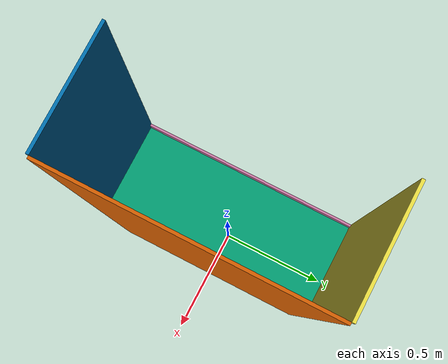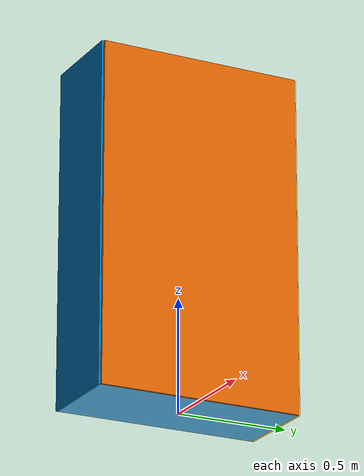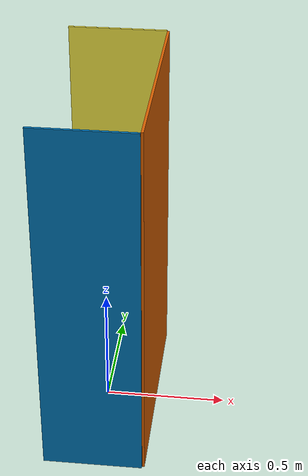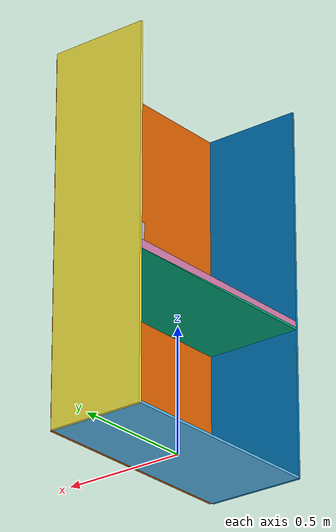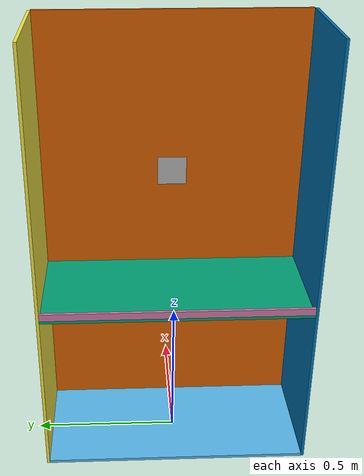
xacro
<robot xmlns:xacro="http://www.ros.org/wiki/xacro" name="shelf">
	<xacro:include filename="$(find fcsc_description)/model/create_box.xacro"/>

	<xacro:arg name="no_upper" default="true"/>
	<xacro:arg name="width" default="0.9"/>
	<xacro:arg name="depth" default="0.4"/>
	<xacro:arg name="installation_lower_height" default="0.59"/>
	<xacro:arg name="installation_upper_height" default="1.09"/>
	<xacro:arg name="stopper_height" default="0.035"/>
	<xacro:arg name="thickness" default="0.01"/>
	<xacro:arg name="height" default="1.5"/>

	<xacro:arg name="marker_size" default="10"/>
  <xacro:arg name="marker_id" default="40"/>

  <property name="marker_size_p" value="${$(arg marker_size) * 0.01}"/>
  <property name="marker_id_p" value="$(arg marker_id)"/>

	<xacro:macro name="box_inertial" params="mass x y z *origin">
		<inertial>
			<mass value="${mass}" />
			<xacro:insert_block name="origin" />
			<inertia  ixx="${mass*(y*y+z*z)/12}" ixy = "0" ixz = "0"
								iyy="${mass*(x*x+z*z)/12}" iyz = "0"
								izz="${mass*(x*x+y*y)/12}" />
		</inertial>
	</xacro:macro>

	<xacro:macro name="ar_marker" params="ar_marker_id ar_marker_size parent *origin">
		<link name="ar_marker_${ar_marker_id}">
			<xacro:box_inertial mass="0.0000001" x="${ar_marker_size}" y="${ar_marker_size}" z="0.0001">
				<origin xyz="0 0 0" rpy="0 0 1.57" />
			</xacro:box_inertial>
			<collision>
				<origin xyz="0 0 0" rpy="0 0 1.57"/>
				<geometry>
					<box size="${ar_marker_size} ${ar_marker_size} 0.0001"/>
				</geometry>
			</collision>
			<visual>
				<origin xyz="0 0 0" rpy="0 0 1.57"/>
				<geometry>
					<box size="${ar_marker_size} ${ar_marker_size} 0.0001"/>
				</geometry>
				<material name="ar_marker_${ar_marker_id}">
					<texture filename="package://fcsc_description/media/materials/textures/MarkerData_${ar_marker_id}.png"/>
				</material>
			</visual>
		</link>
		<gazebo reference="ar_marker_${ar_marker_id}">
			<material>ar_marker_${ar_marker_id}</material>
		</gazebo>
		<joint name="ar_joint_${ar_marker_id}" type="fixed">
			<parent link="${parent}"/>
			<child link="ar_marker_${ar_marker_id}"/>
			<xacro:insert_block name="origin" />
		</joint>
	</xacro:macro>

	<xacro:macro name="shelf">

		<link name="world"/>

		<!-- tanaita ground -->
		<xacro:create_box name="shelf_base" mass="5" x="$(arg depth)" y="$(arg width)" z="$(arg thickness)">
			<origin xyz="0 0 ${$(arg thickness) / 2.0}" rpy="0 0 0"/>
		</xacro:create_box>

		<xacro:create_box name="tanaita_lower" mass="5" x="$(arg depth)" y="$(arg width)" z="$(arg thickness)">
			<origin xyz="0 0 ${$(arg thickness) / 2.0}" rpy="0 0 0"/>
		</xacro:create_box>

		<xacro:unless value="$(arg no_upper)">
			<xacro:create_box name="tanaita_upper" mass="5" x="$(arg depth)" y="$(arg width)" z="$(arg thickness)">
				<origin xyz="0 0 ${$(arg thickness) / 2.0}" rpy="0 0 0"/>
			</xacro:create_box>
			<xacro:create_box name="stopper2" mass="5" x="$(arg thickness)" y="$(arg width)" z="$(arg stopper_height)">
				<origin xyz="0 0 ${$(arg stopper_height) / 2.0}" rpy="0 0 0"/>
			</xacro:create_box>
			<joint name="joint2" type="fixed">
				<parent link="shelf_base"/>
				<child link="tanaita_upper"/>
				<origin xyz="0 0 $(arg installation_upper_height)" rpy="0 0 0"/>
			</joint>
			<joint name="joint7" type="fixed">
				<parent link="shelf_base"/>
				<child link="stopper2"/>
				<origin xyz="${-$(arg depth)/2+$(arg thickness)/2} 0 $(arg installation_upper_height)" rpy="0 0 0"/>
			</joint>
		</xacro:unless>

		<xacro:create_box name="tanaita_side_R" mass="5" x="$(arg depth)" y="$(arg thickness)" z="$(arg height)">
			<origin xyz="0 0 ${$(arg height) / 2.0}" rpy="0 0 0"/>
		</xacro:create_box>

		<xacro:create_box name="tanaita_side_L" mass="5" x="$(arg depth)" y="$(arg thickness)" z="$(arg height)">
			<origin xyz="0 0 ${$(arg height) / 2.0}" rpy="0 0 0"/>
		</xacro:create_box>

		<xacro:create_box name="tanaita_oku" mass="5" x="$(arg thickness)" y="$(arg width)" z="$(arg height)">
			<origin xyz="0 0 ${$(arg height) / 2.0}" rpy="0 0 0"/>
		</xacro:create_box>

		<xacro:create_box name="stopper1" mass="5" x="$(arg thickness)" y="$(arg width)" z="$(arg stopper_height)">
			<origin xyz="0 0 ${$(arg stopper_height) / 2.0}" rpy="0 0 0"/>
		</xacro:create_box>

	  <joint name="world_fixed" type="fixed">
	    <parent link="world"/>
	    <child link="shelf_base"/>
	    <origin xyz="0 0 0"/>
	  </joint>

		<joint name="joint1" type="fixed">
			<parent link="shelf_base"/>
			<child link="tanaita_lower"/>
			<origin xyz="0 0 $(arg installation_lower_height)" rpy="0 0 0"/>
		</joint>

		<joint name="joint3" type="fixed">
			<parent link="shelf_base"/>
			<child link="tanaita_side_R"/>
			<origin xyz="0 ${($(arg width)+$(arg thickness))/2} 0" rpy="0 0 0"/>
		</joint>

		<joint name="joint4" type="fixed">
			<parent link="shelf_base"/>
			<child link="tanaita_side_L"/>
			<origin xyz="0 ${-($(arg width)+$(arg thickness))/2} 0" rpy="0 0 0"/>
		</joint>

		<joint name="joint5" type="fixed">
			<parent link="shelf_base"/>
			<child link="tanaita_oku"/>
			<origin xyz="${($(arg depth)+$(arg thickness))/2} 0 0" rpy="0 0 0"/>
		</joint>

		<joint name="joint6" type="fixed">
			<parent link="shelf_base"/>
			<child link="stopper1"/>
			<origin xyz="${-$(arg depth)/2+$(arg thickness)/2} 0 $(arg installation_lower_height)" rpy="0 0 0"/>
		</joint>

		<!-- ar marker patter 1 -->
		<xacro:ar_marker ar_marker_id="${marker_id_p}" ar_marker_size="${marker_size_p}" parent="tanaita_lower">
			<origin xyz="${$(arg depth) / 2.0 - 0.001} 0 ${marker_size_p / 2.0 + $(arg thickness) + 0.3}" rpy="1.57 0 -1.57"/>
		</xacro:ar_marker>

		<!-- ar marker patter 2 -->

	</xacro:macro>
	<xacro:shelf/>
</robot>

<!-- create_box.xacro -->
<robot xmlns:xacro="http://www.ros.org/wiki/xacro" name="common">
  <xacro:macro name="create_box" params="name mass x y z *origin visual:=true">
    <link name="${name}">
      <inertial>
        <mass value="${mass}"/>
        <xacro:insert_block name="origin" />
        <inertia  ixx="${mass*(y*y+z*z)/12}" ixy = "0" ixz = "0"
                  iyy="${mass*(x*x+z*z)/12}" iyz = "0"
                  izz="${mass*(x*x+y*y)/12}" />
      </inertial>
      <collision>
        <xacro:insert_block name="origin"/>
        <geometry>
          <box size="${x} ${y} ${z}"/>
        </geometry>
      </collision>
      <xacro:if value="${visual}">
        <visual>
          <xacro:insert_block name="origin"/>
          <geometry>
            <box size="${x} ${y} ${z}"/>
          </geometry>
        </visual>
      </xacro:if>
    </link>
  </xacro:macro>
  <!-- example -->
</robot>
